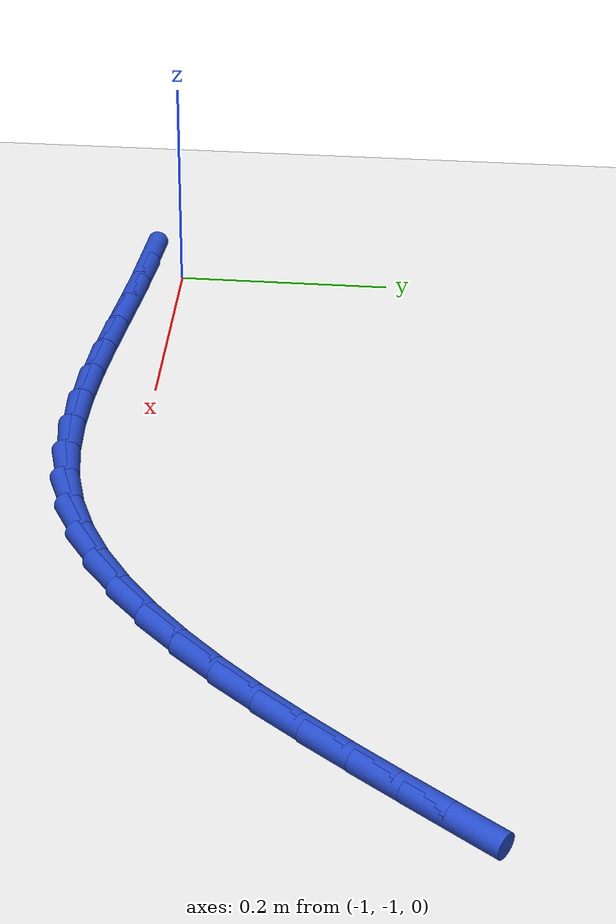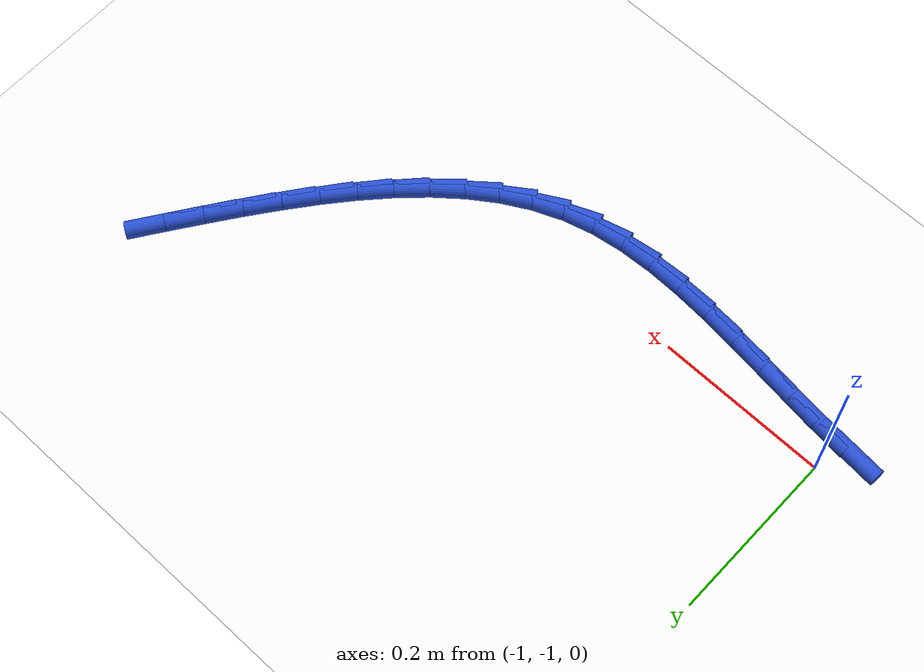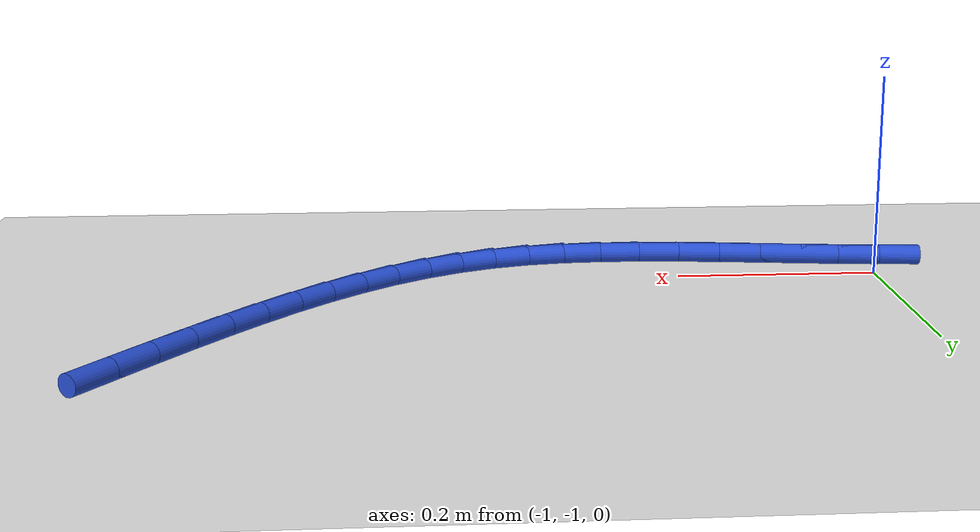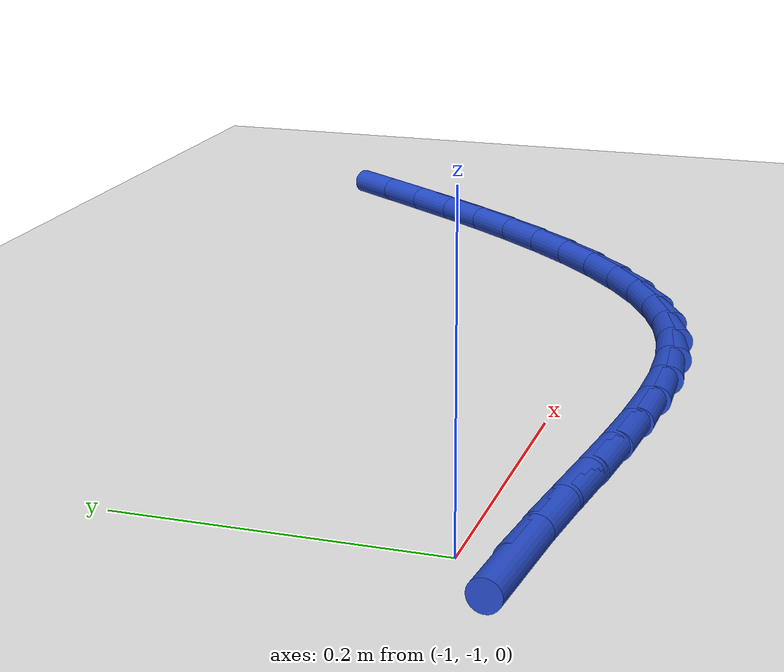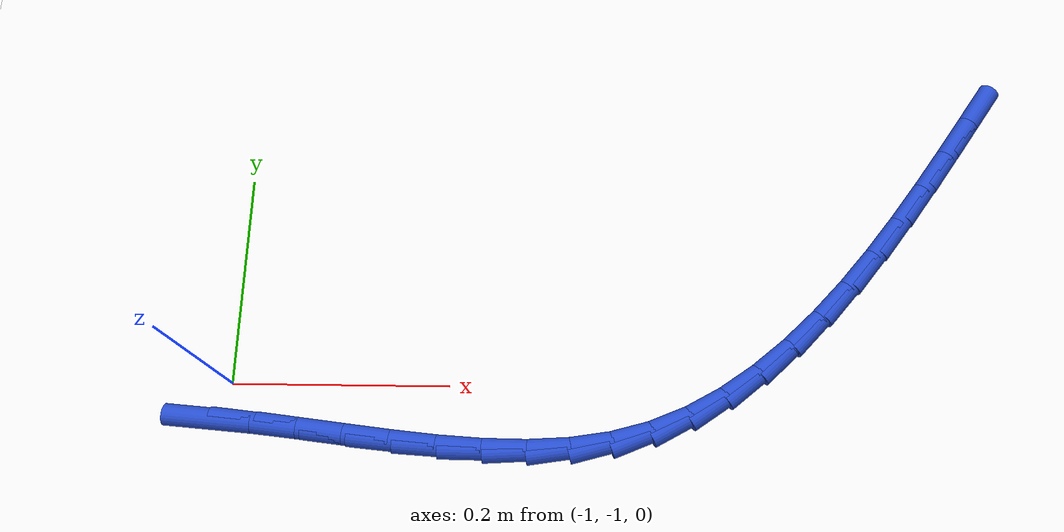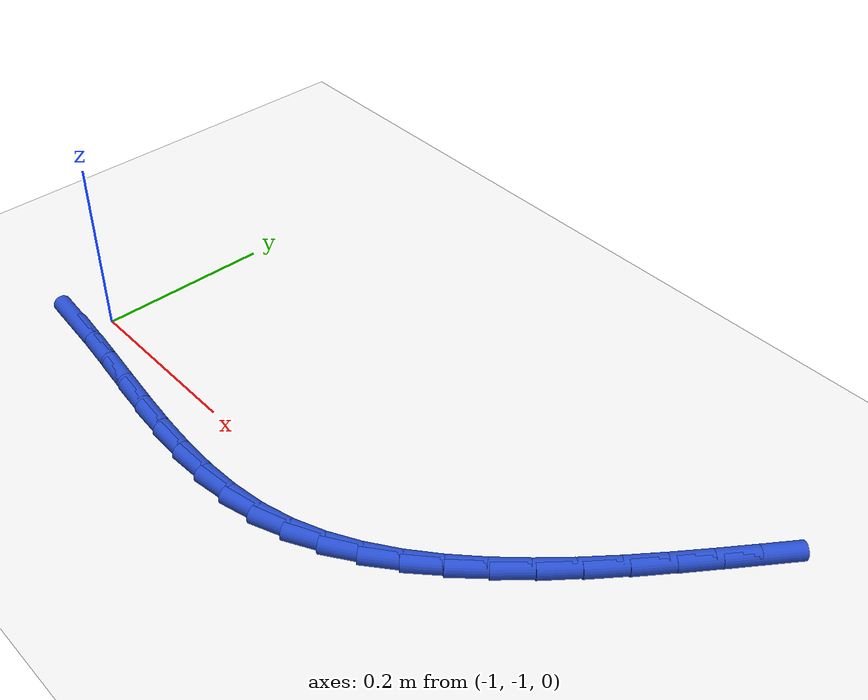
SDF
<sdf version="1.6">
 <world name="default">
  <model name="ground_plane">
   <static>1</static>
   <link name="link">
    <collision name="collision">
     <geometry><plane><normal>0 0 1</normal><size>100 100</size></plane></geometry>
     <surface><friction><ode><mu>100</mu><mu2>50</mu2></ode></friction></surface>
    </collision>
    <visual name="visual">
     <cast_shadows>0</cast_shadows>
     <geometry><plane><normal>0 0 1</normal><size>100 100</size></plane></geometry>
     <material>
      <script><uri>file://media/materials/scripts/gazebo.material</uri><name>Gazebo/WhiteGlow</name></script>
     </material>
    </visual>
   </link>
  </model>
  <model name="line">
   <link name="link_129">
    <pose>-1.0153137997819635 -1.0340797055595352 0.01 0 1.57 -0.08536869343804185</pose>
    <collision name="collision">
     <geometry><cylinder><radius>0.01</radius><length>0.08</length></cylinder></geometry>
    </collision>
    <visual name="visual">
     <material>
      <script><name>Gazebo/Blue</name><uri>file://media/materials/scripts/gazebo.material</uri></script>
     </material>
     <geometry><cylinder><radius>0.01</radius><length>0.08</length></cylinder></geometry>
    </visual>
   </link>
   <link name="link_130">
    <pose>-0.9738211804068264 -1.0376305063150053 0.01 0 1.57 -0.11168982822289891</pose>
    <collision name="collision">
     <geometry><cylinder><radius>0.01</radius><length>0.08</length></cylinder></geometry>
    </collision>
    <visual name="visual">
     <material>
      <script><name>Gazebo/Blue</name><uri>file://media/materials/scripts/gazebo.material</uri></script>
     </material>
     <geometry><cylinder><radius>0.01</radius><length>0.08</length></cylinder></geometry>
    </visual>
   </link>
   <link name="link_131">
    <pose>-0.9320556554360675 -1.042314785038236 0.01 0 1.57 -0.12319863063724834</pose>
    <collision name="collision">
     <geometry><cylinder><radius>0.01</radius><length>0.08</length></cylinder></geometry>
    </collision>
    <visual name="visual">
     <material>
      <script><name>Gazebo/Blue</name><uri>file://media/materials/scripts/gazebo.material</uri></script>
     </material>
     <geometry><cylinder><radius>0.01</radius><length>0.08</length></cylinder></geometry>
    </visual>
   </link>
   <link name="link_132">
    <pose>-0.8902377510199622 -1.0474929178771817 0.01 0 1.57 -0.11983650190239116</pose>
    <collision name="collision">
     <geometry><cylinder><radius>0.01</radius><length>0.08</length></cylinder></geometry>
    </collision>
    <visual name="visual">
     <material>
      <script><name>Gazebo/Blue</name><uri>file://media/materials/scripts/gazebo.material</uri></script>
     </material>
     <geometry><cylinder><radius>0.01</radius><length>0.08</length></cylinder></geometry>
    </visual>
   </link>
   <link name="link_133">
    <pose>-0.8485923982920578 -1.0525075791095366 0.01 0 1.57 -0.10132647342056314</pose>
    <collision name="collision">
     <geometry><cylinder><radius>0.01</radius><length>0.08</length></cylinder></geometry>
    </collision>
    <visual name="visual">
     <material>
      <script><name>Gazebo/Blue</name><uri>file://media/materials/scripts/gazebo.material</uri></script>
     </material>
     <geometry><cylinder><radius>0.01</radius><length>0.08</length></cylinder></geometry>
    </visual>
   </link>
   <link name="link_134">
    <pose>-0.8073445283859028 -1.0567014430129942 0.01 0 1.57 -0.06674894676753854</pose>
    <collision name="collision">
     <geometry><cylinder><radius>0.01</radius><length>0.08</length></cylinder></geometry>
    </collision>
    <visual name="visual">
     <material>
      <script><name>Gazebo/Blue</name><uri>file://media/materials/scripts/gazebo.material</uri></script>
     </material>
     <geometry><cylinder><radius>0.01</radius><length>0.08</length></cylinder></geometry>
    </visual>
   </link>
   <link name="link_135">
    <pose>-0.766719072435046 -1.0594171838652486 0.01 0 1.57 -0.014587191453136496</pose>
    <collision name="collision">
     <geometry><cylinder><radius>0.01</radius><length>0.08</length></cylinder></geometry>
    </collision>
    <visual name="visual">
     <material>
      <script><name>Gazebo/Blue</name><uri>file://media/materials/scripts/gazebo.material</uri></script>
     </material>
     <geometry><cylinder><radius>0.01</radius><length>0.08</length></cylinder></geometry>
    </visual>
   </link>
   <link name="link_136">
    <pose>-0.726940961573035 -1.059997475943994 0.01 0 1.57 0.057099334960836245</pose>
    <collision name="collision">
     <geometry><cylinder><radius>0.01</radius><length>0.08</length></cylinder></geometry>
    </collision>
    <visual name="visual">
     <material>
      <script><name>Gazebo/Blue</name><uri>file://media/materials/scripts/gazebo.material</uri></script>
     </material>
     <geometry><cylinder><radius>0.01</radius><length>0.08</length></cylinder></geometry>
    </visual>
   </link>
   <link name="link_137">
    <pose>-0.6882351269334197 -1.0577849935269237 0.01 0 1.57 0.15023054283762338</pose>
    <collision name="collision">
     <geometry><cylinder><radius>0.01</radius><length>0.08</length></cylinder></geometry>
    </collision>
    <visual name="visual">
     <material>
      <script><name>Gazebo/Blue</name><uri>file://media/materials/scripts/gazebo.material</uri></script>
     </material>
     <geometry><cylinder><radius>0.01</radius><length>0.08</length></cylinder></geometry>
    </visual>
   </link>
   <link name="link_138">
    <pose>-0.6508264996497478 -1.0521224108917315 0.01 0 1.57 0.2656915120901864</pose>
    <collision name="collision">
     <geometry><cylinder><radius>0.01</radius><length>0.08</length></cylinder></geometry>
    </collision>
    <visual name="visual">
     <material>
      <script><name>Gazebo/Blue</name><uri>file://media/materials/scripts/gazebo.material</uri></script>
     </material>
     <geometry><cylinder><radius>0.01</radius><length>0.08</length></cylinder></geometry>
    </visual>
   </link>
   <link name="link_139">
    <pose>-0.6149387052255655 -1.0423564399958265 0.01 0 1.57 0.3919389427219148</pose>
    <collision name="collision">
     <geometry><cylinder><radius>0.01</radius><length>0.08</length></cylinder></geometry>
    </collision>
    <visual name="visual">
     <material>
      <script><name>Gazebo/Blue</name><uri>file://media/materials/scripts/gazebo.material</uri></script>
     </material>
     <geometry><cylinder><radius>0.01</radius><length>0.08</length></cylinder></geometry>
    </visual>
   </link>
   <link name="link_140">
    <pose>-0.5806783040215088 -1.0281958184484625 0.01 0 1.57 0.5074959411224552</pose>
    <collision name="collision">
     <geometry><cylinder><radius>0.01</radius><length>0.08</length></cylinder></geometry>
    </collision>
    <visual name="visual">
     <material>
      <script><name>Gazebo/Blue</name><uri>file://media/materials/scripts/gazebo.material</uri></script>
     </material>
     <geometry><cylinder><radius>0.01</radius><length>0.08</length></cylinder></geometry>
    </visual>
   </link>
   <link name="link_141">
    <pose>-0.5479437307844242 -1.0099929153372746 0.01 0 1.57 0.6084587387133925</pose>
    <collision name="collision">
     <geometry><cylinder><radius>0.01</radius><length>0.08</length></cylinder></geometry>
    </collision>
    <visual name="visual">
     <material>
      <script><name>Gazebo/Blue</name><uri>file://media/materials/scripts/gazebo.material</uri></script>
     </material>
     <geometry><cylinder><radius>0.01</radius><length>0.08</length></cylinder></geometry>
    </visual>
   </link>
   <link name="link_142">
    <pose>-0.516611990015553 -0.9881663730951638 0.01 0 1.57 0.6945081863086895</pose>
    <collision name="collision">
     <geometry><cylinder><radius>0.01</radius><length>0.08</length></cylinder></geometry>
    </collision>
    <visual name="visual">
     <material>
      <script><name>Gazebo/Blue</name><uri>file://media/materials/scripts/gazebo.material</uri></script>
     </material>
     <geometry><cylinder><radius>0.01</radius><length>0.08</length></cylinder></geometry>
    </visual>
   </link>
   <link name="link_143">
    <pose>-0.48656008621613805 -0.9631348341550308 0.01 0 1.57 0.7664070949071627</pose>
    <collision name="collision">
     <geometry><cylinder><radius>0.01</radius><length>0.08</length></cylinder></geometry>
    </collision>
    <visual name="visual">
     <material>
      <script><name>Gazebo/Blue</name><uri>file://media/materials/scripts/gazebo.material</uri></script>
     </material>
     <geometry><cylinder><radius>0.01</radius><length>0.08</length></cylinder></geometry>
    </visual>
   </link>
   <link name="link_144">
    <pose>-0.45766502388741975 -0.9353169409497755 0.01 0 1.57 0.8254201225144064</pose>
    <collision name="collision">
     <geometry><cylinder><radius>0.01</radius><length>0.08</length></cylinder></geometry>
    </collision>
    <visual name="visual">
     <material>
      <script><name>Gazebo/Blue</name><uri>file://media/materials/scripts/gazebo.material</uri></script>
     </material>
     <geometry><cylinder><radius>0.01</radius><length>0.08</length></cylinder></geometry>
    </visual>
   </link>
   <link name="link_145">
    <pose>-0.4298038075306399 -0.9051313359122987 0.01 0 1.57 0.8729171905302978</pose>
    <collision name="collision">
     <geometry><cylinder><radius>0.01</radius><length>0.08</length></cylinder></geometry>
    </collision>
    <visual name="visual">
     <material>
      <script><name>Gazebo/Blue</name><uri>file://media/materials/scripts/gazebo.material</uri></script>
     </material>
     <geometry><cylinder><radius>0.01</radius><length>0.08</length></cylinder></geometry>
    </visual>
   </link>
   <link name="link_146">
    <pose>-0.4028534416470399 -0.8729966614755009 0.01 0 1.57 0.9101504060388557</pose>
    <collision name="collision">
     <geometry><cylinder><radius>0.01</radius><length>0.08</length></cylinder></geometry>
    </collision>
    <visual name="visual">
     <material>
      <script><name>Gazebo/Blue</name><uri>file://media/materials/scripts/gazebo.material</uri></script>
     </material>
     <geometry><cylinder><radius>0.01</radius><length>0.08</length></cylinder></geometry>
    </visual>
   </link>
   <link name="link_147">
    <pose>-0.37669093073786053 -0.8393315600722813 0.01 0 1.57 0.938148440589106</pose>
    <collision name="collision">
     <geometry><cylinder><radius>0.01</radius><length>0.08</length></cylinder></geometry>
    </collision>
    <visual name="visual">
     <material>
      <script><name>Gazebo/Blue</name><uri>file://media/materials/scripts/gazebo.material</uri></script>
     </material>
     <geometry><cylinder><radius>0.01</radius><length>0.08</length></cylinder></geometry>
    </visual>
   </link>
   <link name="link_148">
    <pose>-0.3511932793043445 -0.8045546741355419 0.01 0 1.57 0.9576757686586739</pose>
    <collision name="collision">
     <geometry><cylinder><radius>0.01</radius><length>0.08</length></cylinder></geometry>
    </collision>
    <visual name="visual">
     <material>
      <script><name>Gazebo/Blue</name><uri>file://media/materials/scripts/gazebo.material</uri></script>
     </material>
     <geometry><cylinder><radius>0.01</radius><length>0.08</length></cylinder></geometry>
    </visual>
   </link>
   <link name="link_149">
    <pose>-0.3262374918477328 -0.7690846460981831 0.01 0 1.57 0.9692206554000632</pose>
    <collision name="collision">
     <geometry><cylinder><radius>0.01</radius><length>0.08</length></cylinder></geometry>
    </collision>
    <visual name="visual">
     <material>
      <script><name>Gazebo/Blue</name><uri>file://media/materials/scripts/gazebo.material</uri></script>
     </material>
     <geometry><cylinder><radius>0.01</radius><length>0.08</length></cylinder></geometry>
    </visual>
   </link>
   <link name="link_150">
    <pose>-0.3017005728692668 -0.7333401183931045 0.01 0 1.57 0.9729902230151581</pose>
    <collision name="collision">
     <geometry><cylinder><radius>0.01</radius><length>0.08</length></cylinder></geometry>
    </collision>
    <visual name="visual">
     <material>
      <script><name>Gazebo/Blue</name><uri>file://media/materials/scripts/gazebo.material</uri></script>
     </material>
     <geometry><cylinder><radius>0.01</radius><length>0.08</length></cylinder></geometry>
    </visual>
   </link>
  </model>
 </world>
</sdf>
